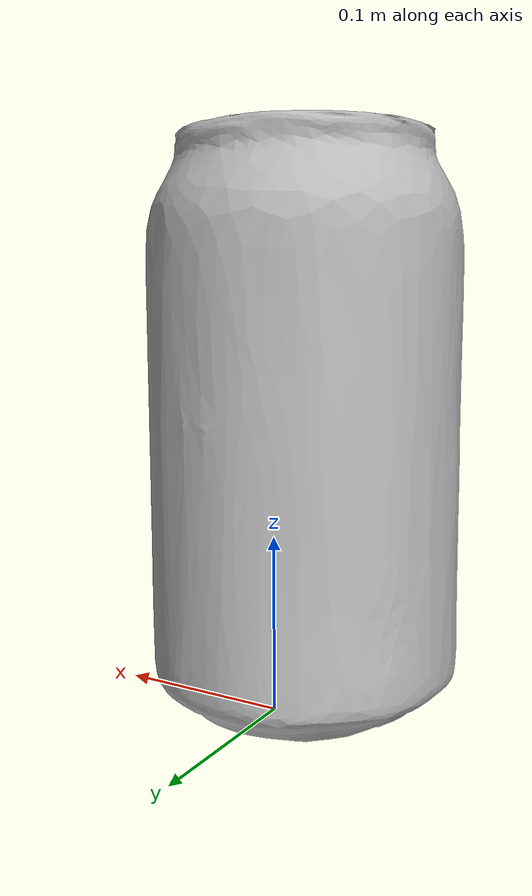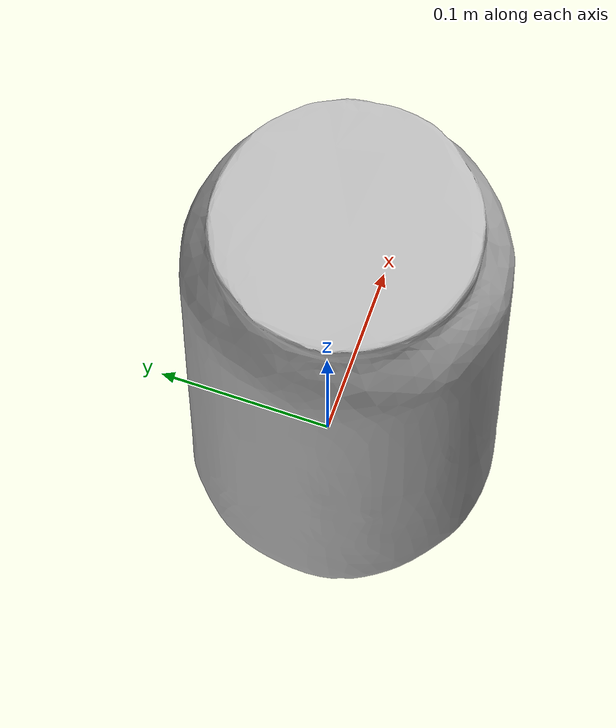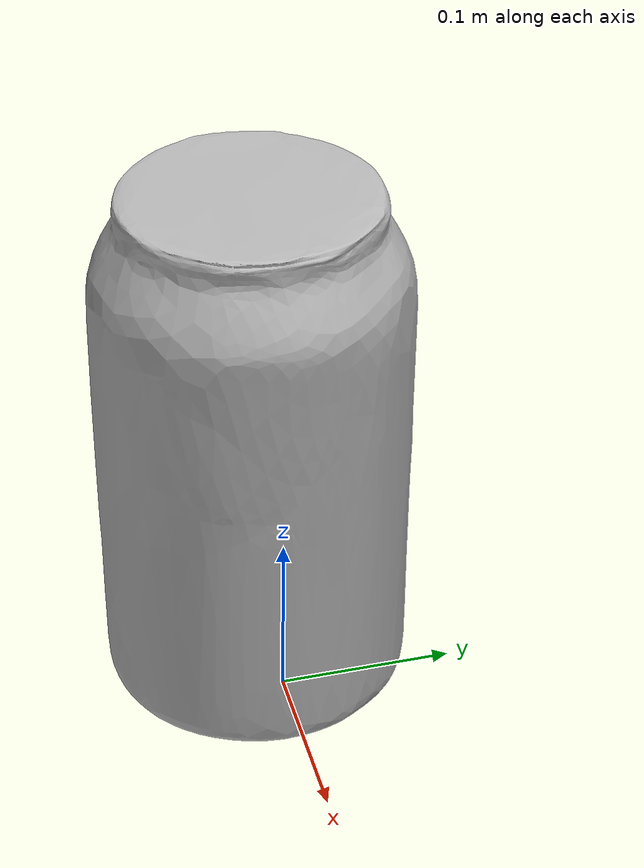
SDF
<?xml version="1.0" ?>
<sdf version="1.4">
  <model name="coke_can">
    <link name="link">
      <inertial>
        <pose>-0.01 -0.012 0.15 0 0 0</pose>
        <mass>0.390</mass>
        <inertia>
          <ixx>0.00058</ixx>
          <ixy>0</ixy>
          <ixz>0</ixz>
          <iyy>0.00058</iyy>
          <iyz>0</iyz>
          <izz>0.00019</izz>
        </inertia>
      </inertial>
      <collision name="collision">
        <pose>0 0 -0.46 0 0 0</pose>
        <geometry>
          <mesh>
            <uri>model://coke_can/meshes/soda_can.dae</uri>
          </mesh>
        </geometry>
        <surface>
          <friction>
            <ode>
              <mu>1.0</mu>
              <mu2>1.0</mu2>
            </ode>
          </friction>
          <contact>
            <ode>
              <kp>10000000.0</kp>
              <kd>1.0</kd>
              <min_depth>0.001</min_depth>
              <max_vel>0.1</max_vel>
            </ode>
          </contact>
        </surface>
      </collision>
      <visual name="visual">
        <pose>0 0 -0.46 0 0 0</pose>
        <geometry>
          <mesh>
            <uri>model://coke_can/meshes/soda_can.dae</uri>
          </mesh>
        </geometry>
      </visual>
    </link>
  </model>
</sdf>
